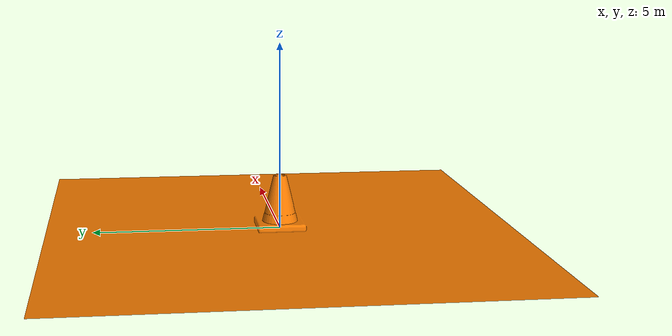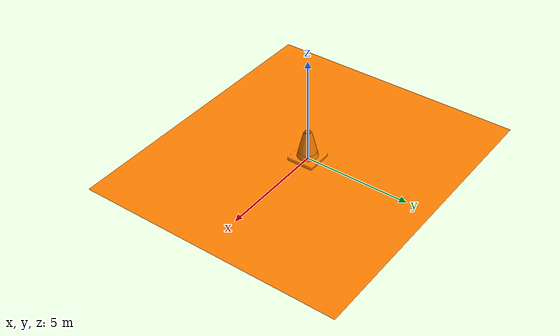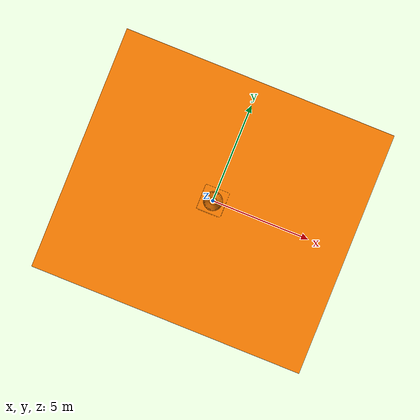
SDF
<?xml version='1.0'?>
<sdf version='1.7'>
  <model name='traffic_cone'>
    <link name='link'>
      <visual name='visual'>
        <geometry>
          <mesh>
            <uri>meshes/Cone.dae</uri>
            <scale>0.5 0.5 0.5</scale> </mesh>  </geometry>
        <material>
          <ambient>1 0.5 0 1</ambient>
          <diffuse>1 0.5 0 1</diffuse>
          <specular>0.1 0.1 0.1 1</specular>
          <emissive>0 0 0 1</emissive>
        </material>
      </visual>
      <collision name='collision'>
        <geometry>
          <mesh>
            <uri>meshes/Cone.dae</uri>
            <scale>0.5 0.5 0.5</scale> </mesh>  </geometry>
      </collision>
    </link>
    <static>true</static>
  </model>
</sdf>
